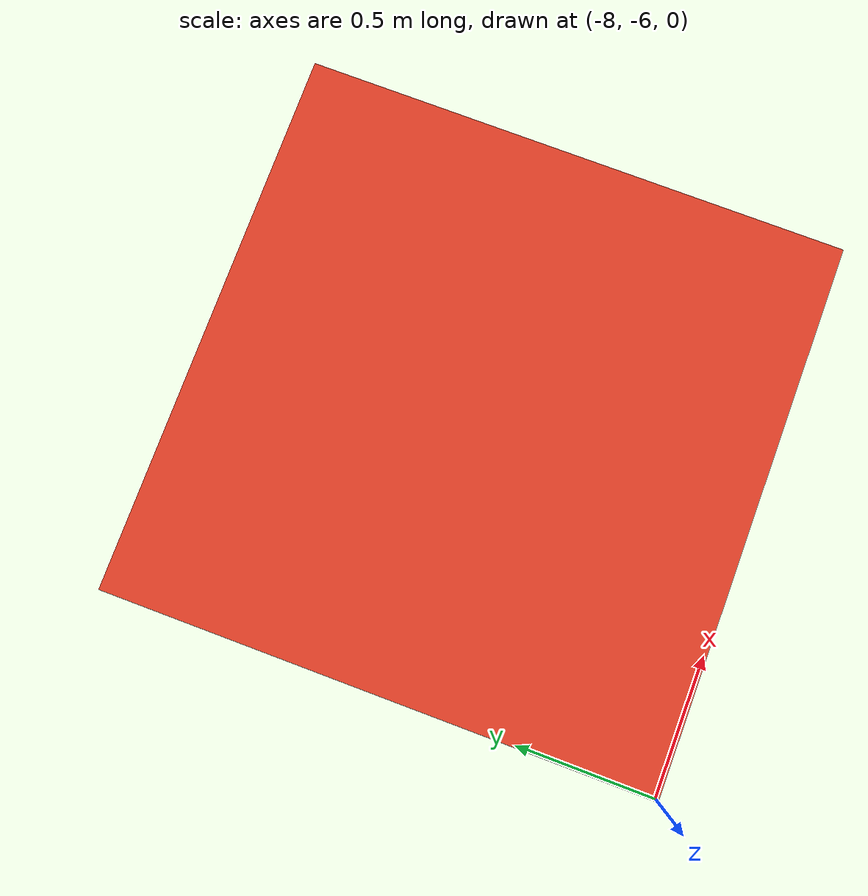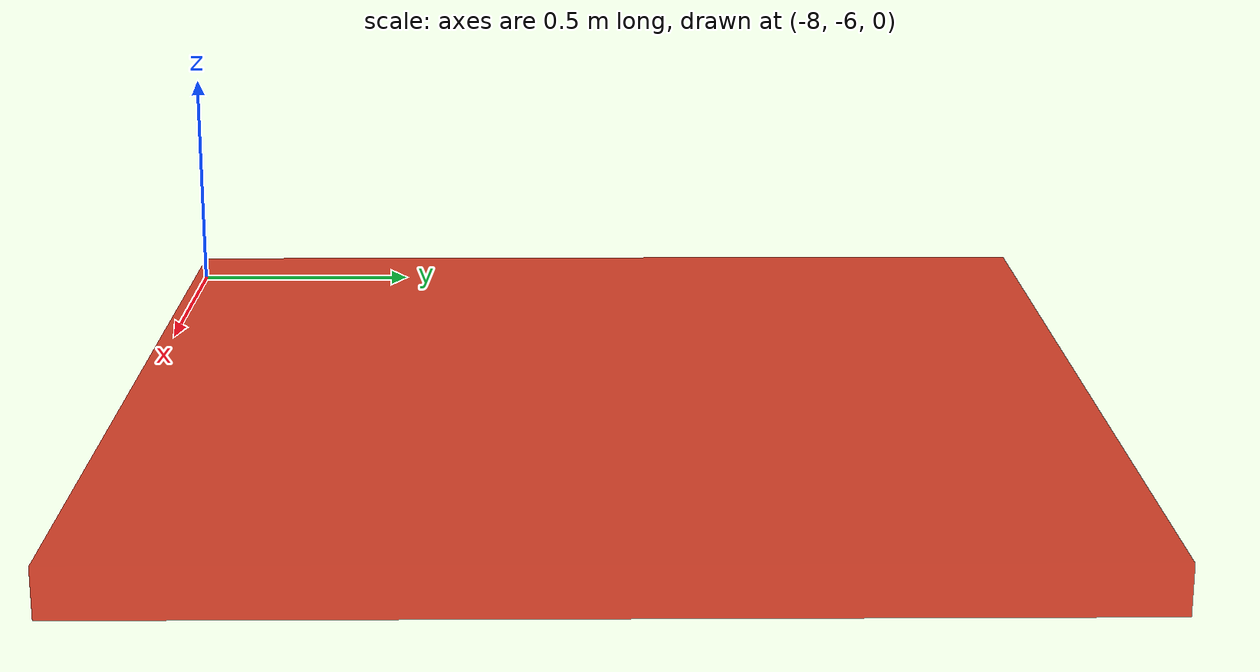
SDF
<sdf version="1.6">
  <model name="tile_-4_-3">
    <pose>-7 -5 0 0 0 0</pose>
      <link name="tile_-4_-3">
        <pose>0 0 0 0 -0 0</pose>
        <inertial>
          <mass>260.134</mass>
          <inertia>
            <ixx>86.8209</ixx>
            <ixy>0</ixy>
            <ixz>0</ixz>
            <iyy>86.8213</iyy>
            <iyz>0</iyz>
            <izz>173.423</izz>
          </inertia>
          <pose>0 0 0 0 -0 0</pose>
        </inertial>
        <visual name='visual'>
          <geometry>
            <box>
              <size>2 2 0.1</size>
            </box>
          </geometry>
          <material>
            <ambient>0.9 0.1 0 0.8</ambient>
            <diffuse>0.9 0.1 0 0.8</diffuse>
            <specular>0.9 0.1 0 0.8</specular>
          </material>
        </visual>
        <collision name='collision'>
          <geometry>
            <box>
              <size>2 2 0.1</size>
            </box>
          </geometry>
          <surface>
            <friction>
              <ode>
                <mu>45.0</mu>
                <mu2>14.000000000000002</mu2>
              </ode>
            </friction>
            <bounce/>
            <contact/>
          </surface>
        </collision>
        <enable_wind>false</enable_wind>
      </link>
  </model>
</sdf>
